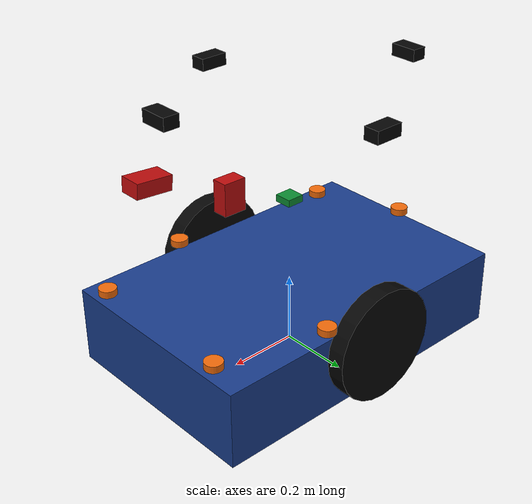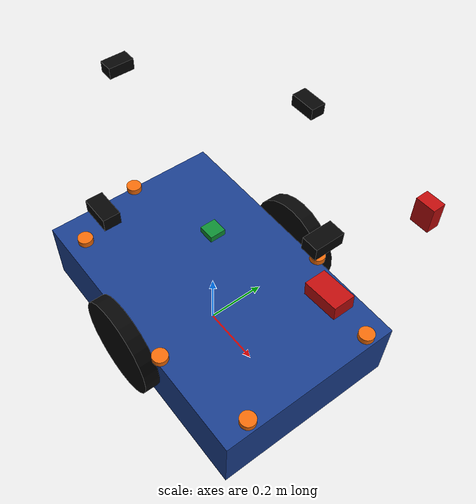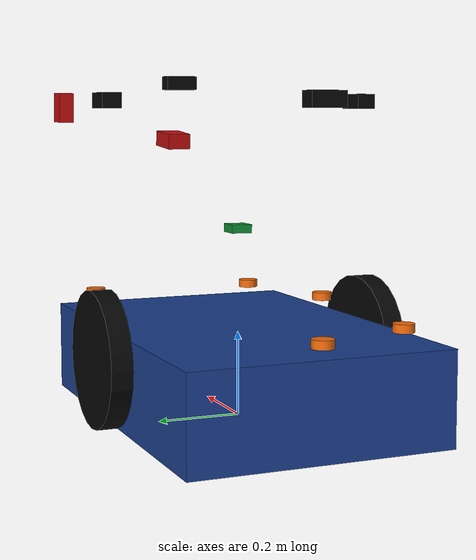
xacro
<?xml version="1.0"?>
<robot xmlns:xacro="http://www.ros.org/wiki/xacro" name="indoor_autonomous_wheelchair">

  <xacro:property name="base_length" value="0.95"/>
  <xacro:property name="base_width" value="0.62"/>
  <xacro:property name="base_height" value="0.22"/>
  <xacro:property name="wheel_radius" value="0.16"/>
  <xacro:property name="wheel_width" value="0.05"/>
  <xacro:arg name="include_blocked_right_lidar_for_mock" default="false"/>
  <xacro:arg name="diagnostic_measured_layout" default="false"/>
  <xacro:arg name="diagnostic_layout_profile" default="$(find wheelchair_description)/config/diagnostic_measured_layout.yaml"/>
  <xacro:property name="diag_layout" value="${xacro.load_yaml('$(arg diagnostic_layout_profile)')}"/>

  <link name="base_link">
    <visual>
      <origin xyz="0 0 0.11" rpy="0 0 0"/>
      <geometry>
        <box size="${base_length} ${base_width} ${base_height}"/>
      </geometry>
      <material name="base_blue">
        <color rgba="0.1 0.24 0.55 1.0"/>
      </material>
    </visual>
    <collision>
      <origin xyz="0 0 0.11" rpy="0 0 0"/>
      <geometry>
        <box size="${base_length} ${base_width} ${base_height}"/>
      </geometry>
    </collision>
  </link>

  <link name="left_wheel_link">
    <visual>
      <origin xyz="0 0 0" rpy="1.5708 0 0"/>
      <geometry>
        <cylinder radius="${wheel_radius}" length="${wheel_width}"/>
      </geometry>
      <material name="dark">
        <color rgba="0.02 0.02 0.02 1.0"/>
      </material>
    </visual>
  </link>
  <joint name="left_wheel_fixed_joint" type="fixed">
    <parent link="base_link"/>
    <child link="left_wheel_link"/>
    <origin xyz="0 0.34 0.16" rpy="0 0 0"/>
  </joint>

  <link name="right_wheel_link">
    <visual>
      <origin xyz="0 0 0" rpy="1.5708 0 0"/>
      <geometry>
        <cylinder radius="${wheel_radius}" length="${wheel_width}"/>
      </geometry>
      <material name="dark"/>
    </visual>
  </link>
  <joint name="right_wheel_fixed_joint" type="fixed">
    <parent link="base_link"/>
    <child link="right_wheel_link"/>
    <origin xyz="0 -0.34 0.16" rpy="0 0 0"/>
  </joint>

  <link name="laser_link">
    <visual>
      <origin xyz="0 0 0" rpy="0 0 0"/>
      <geometry>
        <box size="0.10 0.06 0.04"/>
      </geometry>
      <material name="laser_red">
        <color rgba="0.75 0.05 0.05 1.0"/>
      </material>
    </visual>
  </link>
  <joint name="laser_fixed_joint" type="fixed">
    <parent link="base_link"/>
    <child link="laser_link"/>
    <origin xyz="0.45 0.0 0.65" rpy="0.0 -0.0873 0.0"/>
  </joint>

  <xacro:macro name="xtm60_link" params="name xyz rpy">
    <link name="${name}">
      <visual>
        <origin xyz="0 0 0" rpy="0 0 0"/>
        <geometry>
          <box size="0.037 0.075 0.055"/>
        </geometry>
        <material name="laser_red"/>
      </visual>
    </link>
    <joint name="${name}_fixed_joint" type="fixed">
      <parent link="base_link"/>
      <child link="${name}"/>
      <origin xyz="${xyz}" rpy="${rpy}"/>
    </joint>
  </xacro:macro>

  <xacro:unless value="$(arg diagnostic_measured_layout)">
    <xacro:xtm60_link
      name="xtm60_left_link"
      xyz="0.45 0.30 0.735"
      rpy="1.5515153364 -0.0136154207 1.5709313394"/>

    <xacro:if value="$(arg include_blocked_right_lidar_for_mock)">
    <xacro:xtm60_link
      name="xtm60_right_link"
      xyz="0.606 -0.24 0.499"
      rpy="1.5806995918 0.1564194958 1.5715764604"/>
    </xacro:if>
  </xacro:unless>
  <xacro:if value="$(arg diagnostic_measured_layout)">
    <xacro:xtm60_link name="xtm60_left_link"
      xyz="${' '.join(map(str, diag_layout['sensors']['left']['xyz']))}"
      rpy="${' '.join(map(str, diag_layout['sensors']['left']['rpy']))}"/>
    <xacro:xtm60_link name="xtm60_right_link"
      xyz="${' '.join(map(str, diag_layout['sensors']['right']['xyz']))}"
      rpy="${' '.join(map(str, diag_layout['sensors']['right']['rpy']))}"/>
  </xacro:if>

  <link name="imu_link">
    <visual>
      <origin xyz="0 0 0" rpy="0 0 0"/>
      <geometry>
        <box size="0.05 0.05 0.02"/>
      </geometry>
      <material name="imu_green">
        <color rgba="0.05 0.55 0.2 1.0"/>
      </material>
    </visual>
  </link>
  <joint name="imu_fixed_joint" type="fixed">
    <parent link="base_link"/>
    <child link="imu_link"/>
    <!-- Roll/pitch from the 2026-07-22 user-confirmed level 60 s gravity
         capture. Yaw and xyz remain uncalibrated estimates. -->
    <xacro:unless value="$(arg diagnostic_measured_layout)">
      <origin xyz="0.0 0.0 0.45" rpy="0.0098981264 0.0011002597 0.0"/>
    </xacro:unless>
    <xacro:if value="$(arg diagnostic_measured_layout)">
      <origin xyz="${' '.join(map(str, diag_layout['sensors']['imu']['xyz']))}"
        rpy="${' '.join(map(str, diag_layout['sensors']['imu']['rpy']))}"/>
    </xacro:if>
  </joint>

  <xacro:macro name="camera_link" params="name xyz rpy">
    <link name="${name}">
      <visual>
        <origin xyz="0 0 0" rpy="0 0 0"/>
        <geometry>
          <box size="0.045 0.08 0.035"/>
        </geometry>
        <material name="camera_black">
          <color rgba="0.02 0.02 0.02 1.0"/>
        </material>
      </visual>
    </link>
    <joint name="${name}_fixed_joint" type="fixed">
      <parent link="base_link"/>
      <child link="${name}"/>
      <origin xyz="${xyz}" rpy="${rpy}"/>
    </joint>
  </xacro:macro>

  <xacro:camera_link name="camera_front_link" xyz="0.40 0.0 0.80" rpy="0.0 0.0 0.0"/>
  <xacro:camera_link name="camera_left_link" xyz="0.0 0.32 0.75" rpy="0.0 0.0 1.5708"/>
  <xacro:camera_link name="camera_right_link" xyz="0.0 -0.32 0.75" rpy="0.0 0.0 -1.5708"/>
  <xacro:camera_link name="camera_rear_link" xyz="-0.45 0.0 0.75" rpy="0.0 0.0 3.1416"/>

  <xacro:macro name="ultrasonic_link" params="idx xyz rpy">
    <link name="ultrasonic_${idx}_link">
      <visual>
        <origin xyz="0 0 0" rpy="0 0 0"/>
        <geometry>
          <cylinder radius="0.025" length="0.02"/>
        </geometry>
        <material name="ultra_orange">
          <color rgba="0.95 0.42 0.04 1.0"/>
        </material>
      </visual>
    </link>
    <joint name="ultrasonic_${idx}_fixed_joint" type="fixed">
      <parent link="base_link"/>
      <child link="ultrasonic_${idx}_link"/>
      <origin xyz="${xyz}" rpy="${rpy}"/>
    </joint>
  </xacro:macro>

  <xacro:ultrasonic_link idx="0" xyz="0.45 0.22 0.25" rpy="0.0 0.0 0.35"/>
  <xacro:ultrasonic_link idx="1" xyz="0.15 0.30 0.25" rpy="0.0 0.0 1.5708"/>
  <xacro:ultrasonic_link idx="2" xyz="0.45 -0.22 0.25" rpy="0.0 0.0 -0.35"/>
  <xacro:ultrasonic_link idx="3" xyz="0.15 -0.30 0.25" rpy="0.0 0.0 -1.5708"/>
  <xacro:ultrasonic_link idx="4" xyz="-0.45 0.0 0.25" rpy="0.0 0.0 3.1416"/>
  <xacro:ultrasonic_link idx="5" xyz="-0.35 -0.25 0.25" rpy="0.0 0.0 -2.62"/>
</robot>
